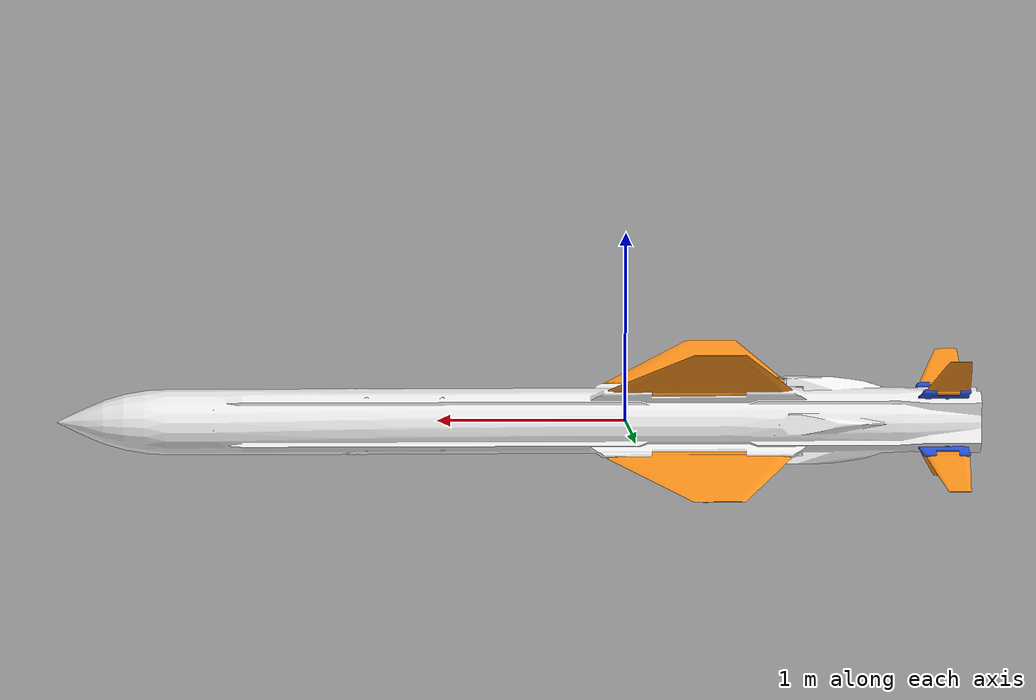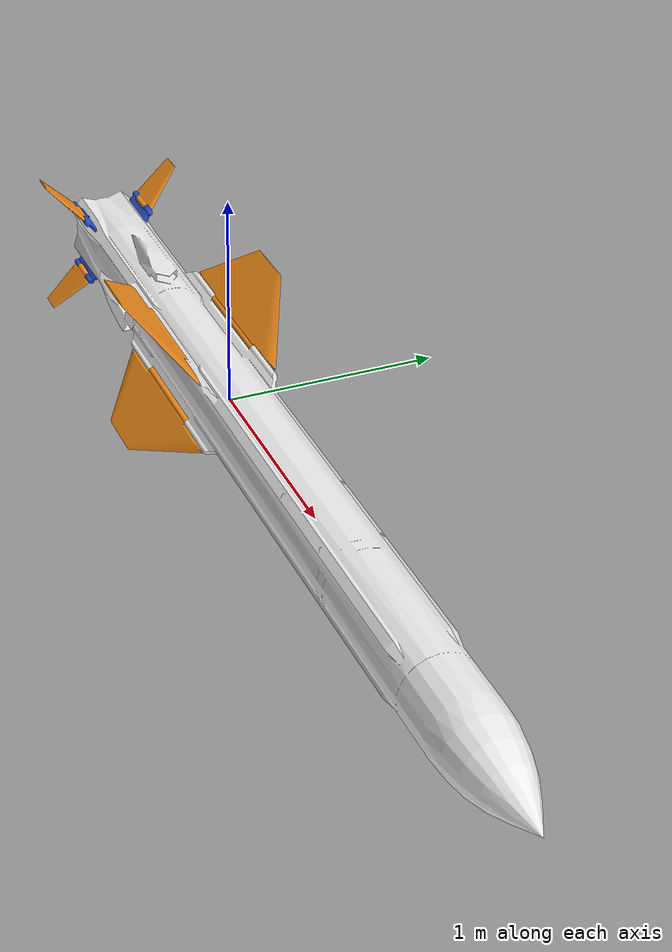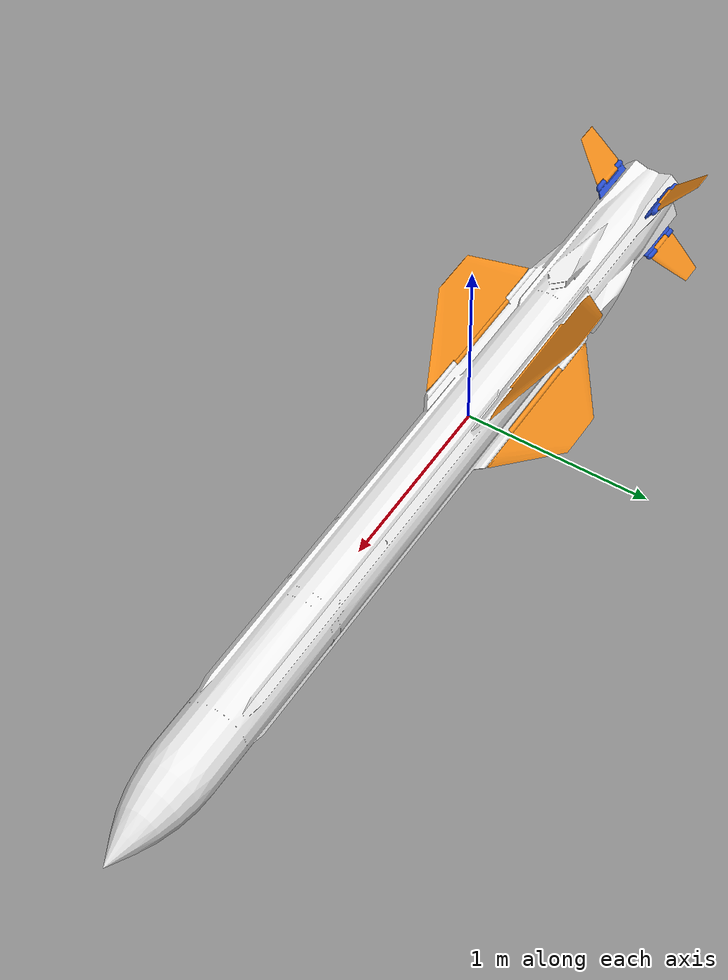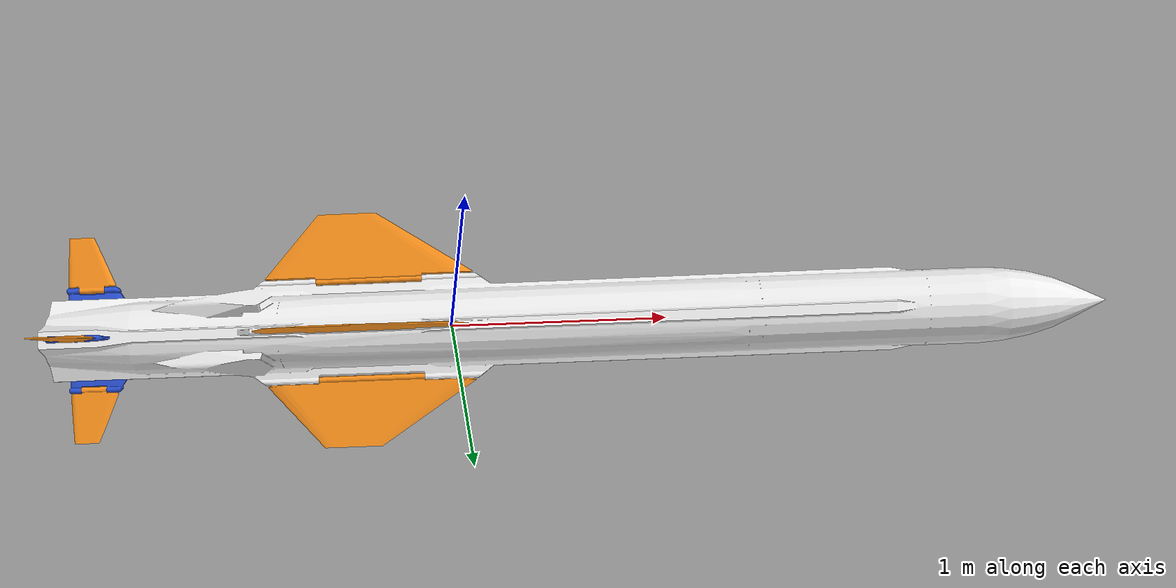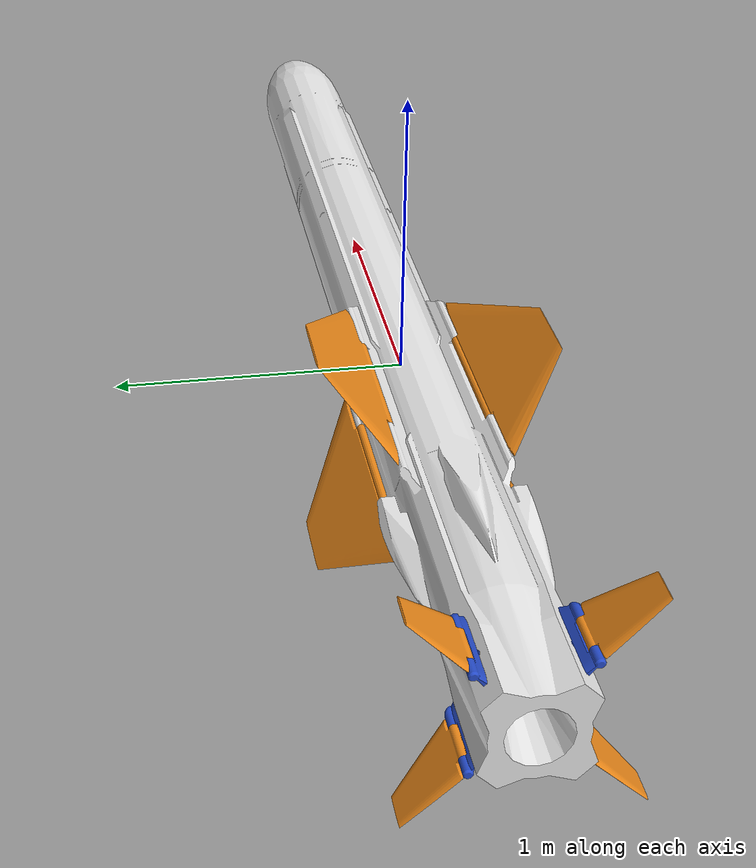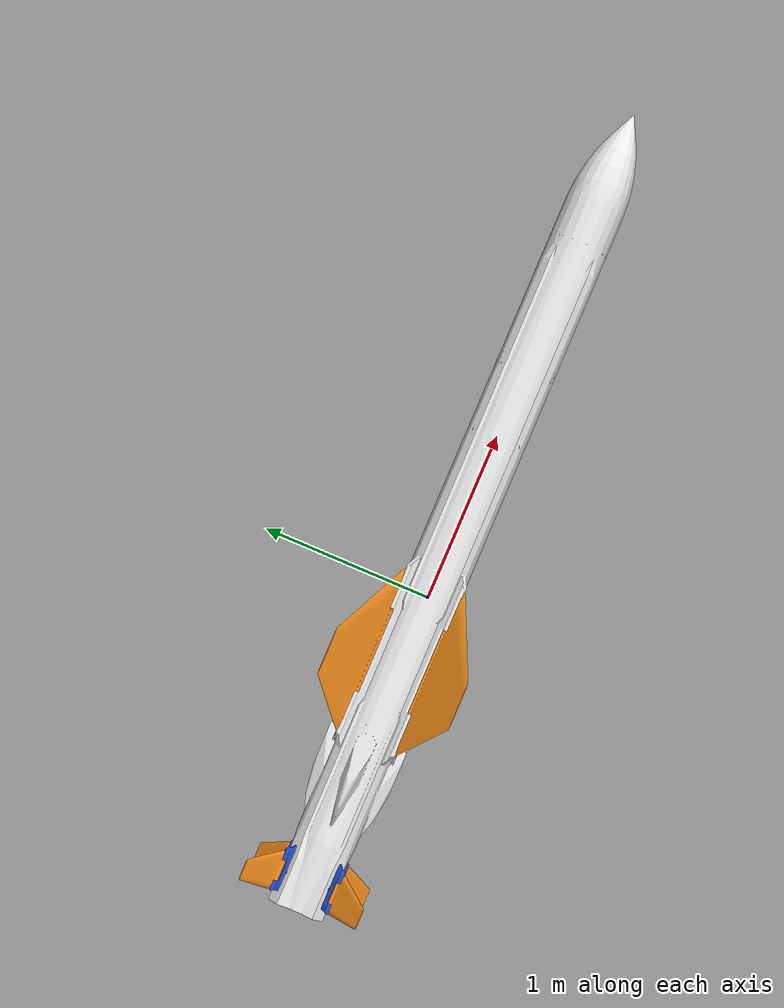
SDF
<sdf version='1.7'>
  <model name='model_missile'>
    <link name='base_link'>
      <inertial>
        <pose>-0.025549 1.1e-05 1.1e-05 0 -0 0</pose>
        <mass>599.968</mass>
        <inertia>
          <ixx>16.3793</ixx>
          <ixy>0.00254175</ixy>
          <ixz>0.00254175</ixz>
          <iyy>826.732</iyy>
          <iyz>-0.00308126</iyz>
          <izz>826.732</izz>
        </inertia>
      </inertial>
      <collision name='base_link_collision'>
        <pose>0 0 0 0 -0 0</pose>
        <geometry>
          <mesh>
            <scale>0.001 0.001 0.001</scale>
            <uri>model://model_missile_description/meshes/base_link.stl</uri>
          </mesh>
        </geometry>
        <surface>
          <contact>
            <ode/>
          </contact>
          <friction>
            <ode>
              <mu>0.2</mu>
              <mu2>0.2</mu2>
            </ode>
          </friction>
        </surface>
      </collision>
      <collision name='base_link_fixed_joint_lump__Wing1_1_collision_1'>
        <pose>0 0 0 0 -0 0</pose>
        <geometry>
          <mesh>
            <scale>0.001 0.001 0.001</scale>
            <uri>model://model_missile_description/meshes/Wing1_1.stl</uri>
          </mesh>
        </geometry>
        <surface>
          <contact>
            <ode/>
          </contact>
          <friction>
            <ode>
              <mu>0.2</mu>
              <mu2>0.2</mu2>
            </ode>
          </friction>
        </surface>
      </collision>
      <collision name='base_link_fixed_joint_lump__Wing1_2_collision_2'>
        <pose>0 0 0 0 -0 0</pose>
        <geometry>
          <mesh>
            <scale>0.001 0.001 0.001</scale>
            <uri>model://model_missile_description/meshes/Wing1_2.stl</uri>
          </mesh>
        </geometry>
        <surface>
          <contact>
            <ode/>
          </contact>
          <friction>
            <ode>
              <mu>0.2</mu>
              <mu2>0.2</mu2>
            </ode>
          </friction>
        </surface>
      </collision>
      <collision name='base_link_fixed_joint_lump__Wing1_3_collision_3'>
        <pose>0 0 0 0 -0 0</pose>
        <geometry>
          <mesh>
            <scale>0.001 0.001 0.001</scale>
            <uri>model://model_missile_description/meshes/Wing1_3.stl</uri>
          </mesh>
        </geometry>
        <surface>
          <contact>
            <ode/>
          </contact>
          <friction>
            <ode>
              <mu>0.2</mu>
              <mu2>0.2</mu2>
            </ode>
          </friction>
        </surface>
      </collision>
      <collision name='base_link_fixed_joint_lump__Wing1_4_collision_4'>
        <pose>0 0 0 0 -0 0</pose>
        <geometry>
          <mesh>
            <scale>0.001 0.001 0.001</scale>
            <uri>model://model_missile_description/meshes/Wing1_4.stl</uri>
          </mesh>
        </geometry>
        <surface>
          <contact>
            <ode/>
          </contact>
          <friction>
            <ode>
              <mu>0.2</mu>
              <mu2>0.2</mu2>
            </ode>
          </friction>
        </surface>
      </collision>
      <visual name='base_link_visual'>
        <pose>0 0 0 0 -0 0</pose>
        <geometry>
          <mesh>
            <scale>0.001 0.001 0.001</scale>
            <uri>model://model_missile_description/meshes/base_link.stl</uri>
          </mesh>
        </geometry>
        <plugin name='LiftDragVisual' filename='libMultiplevectorVisual.so'>
          <topic_name vector_size='5'>AeroVectors</topic_name>
        </plugin>
        <plugin name='VectoredThrustVisual' filename='libForceVisual.so'>
          <topic_name>thrust_visual</topic_name>
          <color>Gazebo/Green</color>
        </plugin>
        <material>
          <script>
            <name>Gazebo/White</name>
            <uri>file://media/materials/scripts/gazebo.material</uri>
          </script>
        </material>
      </visual>
      <visual name='base_link_fixed_joint_lump__Wing1_1_visual_1'>
        <pose>0 0 0 0 -0 0</pose>
        <geometry>
          <mesh>
            <scale>0.001 0.001 0.001</scale>
            <uri>model://model_missile_description/meshes/Wing1_1.stl</uri>
          </mesh>
        </geometry>
        <material>
          <script>
            <name>Gazebo/Orange</name>
            <uri>file://media/materials/scripts/gazebo.material</uri>
          </script>
        </material>
      </visual>
      <visual name='base_link_fixed_joint_lump__Wing1_2_visual_2'>
        <pose>0 0 0 0 -0 0</pose>
        <geometry>
          <mesh>
            <scale>0.001 0.001 0.001</scale>
            <uri>model://model_missile_description/meshes/Wing1_2.stl</uri>
          </mesh>
        </geometry>
        <material>
          <script>
            <name>Gazebo/Orange</name>
            <uri>file://media/materials/scripts/gazebo.material</uri>
          </script>
        </material>
      </visual>
      <visual name='base_link_fixed_joint_lump__Wing1_3_visual_3'>
        <pose>0 0 0 0 -0 0</pose>
        <geometry>
          <mesh>
            <scale>0.001 0.001 0.001</scale>
            <uri>model://model_missile_description/meshes/Wing1_3.stl</uri>
          </mesh>
        </geometry>
        <material>
          <script>
            <name>Gazebo/Orange</name>
            <uri>file://media/materials/scripts/gazebo.material</uri>
          </script>
        </material>
      </visual>
      <visual name='base_link_fixed_joint_lump__Wing1_4_visual_4'>
        <pose>0 0 0 0 -0 0</pose>
        <geometry>
          <mesh>
            <scale>0.001 0.001 0.001</scale>
            <uri>model://model_missile_description/meshes/Wing1_4.stl</uri>
          </mesh>
        </geometry>
        <material>
          <script>
            <name>Gazebo/Orange</name>
            <uri>file://media/materials/scripts/gazebo.material</uri>
          </script>
        </material>
      </visual>
      <gravity>1</gravity>
      <sensor name='camera_top_side' type='camera'>
        <pose>-2 0 2 0 0.5236 0</pose>
        <camera>
          <horizontal_fov>1.347</horizontal_fov>
          <image>
            <width>640</width>
            <height>480</height>
          </image>
          <clip>
            <near>0.1</near>
            <far>100</far>
          </clip>
        </camera>
        <always_on>1</always_on>
        <update_rate>30</update_rate>
      </sensor>
      <sensor name='camera_deflection' type='camera'>
        <pose>-1 -1 0 0 -0 2.3562</pose>
        <camera>
          <horizontal_fov>1.347</horizontal_fov>
          <image>
            <width>640</width>
            <height>480</height>
          </image>
          <clip>
            <near>0.1</near>
            <far>1000</far>
          </clip>
        </camera>
        <always_on>1</always_on>
        <update_rate>30</update_rate>
      </sensor>
      <sensor name='touching_ground' type='contact'>
        <contact>
          <collision>base_link_collision</collision>
          <topic>__default_topic__</topic>
        </contact>
      </sensor>
      <self_collide>1</self_collide>
    </link>
    <joint name='fins_rev1' type='revolute'>
      <pose relative_to='base_link'>-1.70084 0.127279 0.127279 0 -0 0</pose>
      <parent>base_link</parent>
      <child>FinHolder_1</child>
      <axis>
        <xyz>0 0.707107 0.707107</xyz>
        <limit>
          <lower>-0.349066</lower>
          <upper>0.349066</upper>
          <effort>1e+06</effort>
          <velocity>1e+06</velocity>
        </limit>
        <dynamics>
          <spring_reference>0</spring_reference>
          <spring_stiffness>0</spring_stiffness>
        </dynamics>
      </axis>
      <physics>
        <ode>
          <limit>
            <cfm>0</cfm>
            <erp>0.2</erp>
          </limit>
        </ode>
      </physics>
      <physics>
        <ode>
          <cfm_damping>1</cfm_damping>
          <limit>
            <cfm>1</cfm>
            <erf>1</erf>
            <erp>0.2</erp>
          </limit>
        </ode>
      </physics>
      <dynamic>
        <damping>5</damping>
        <spring_stiffness>0.5</spring_stiffness>
        <spring_reference>0.5</spring_reference>
      </dynamic>
    </joint>
    <link name='FinHolder_1'>
      <pose relative_to='fins_rev1'>0 0 0 0 -0 0</pose>
      <inertial>
        <pose>-0.005947 0.076299 0.076298 0 -0 0</pose>
        <mass>2.2</mass>
        <inertia>
          <ixx>0.012605</ixx>
          <ixy>0.00187564</ixy>
          <ixz>0.0018757</ixz>
          <iyy>0.0149545</iyy>
          <iyz>-0.00624299</iyz>
          <izz>0.0149541</izz>
        </inertia>
      </inertial>
      <collision name='FinHolder_1_collision'>
        <pose>1.70084 -0.127279 -0.127279 0 -0 0</pose>
        <geometry>
          <mesh>
            <scale>0.001 0.001 0.001</scale>
            <uri>model://model_missile_description/meshes/FinHolder_1.stl</uri>
          </mesh>
        </geometry>
        <surface>
          <contact>
            <ode/>
          </contact>
          <friction>
            <ode>
              <mu>0.2</mu>
              <mu2>0.2</mu2>
            </ode>
          </friction>
        </surface>
      </collision>
      <collision name='FinHolder_1_fixed_joint_lump__Fin_1_collision_1'>
        <pose>1.70084 -0.127279 -0.127279 0 -0 0</pose>
        <geometry>
          <mesh>
            <scale>0.001 0.001 0.001</scale>
            <uri>model://model_missile_description/meshes/Fin_1.stl</uri>
          </mesh>
        </geometry>
        <surface>
          <contact>
            <ode/>
          </contact>
          <friction>
            <ode>
              <mu>0.2</mu>
              <mu2>0.2</mu2>
            </ode>
          </friction>
        </surface>
      </collision>
      <visual name='FinHolder_1_visual'>
        <pose>1.70084 -0.127279 -0.127279 0 -0 0</pose>
        <geometry>
          <mesh>
            <scale>0.001 0.001 0.001</scale>
            <uri>model://model_missile_description/meshes/FinHolder_1.stl</uri>
          </mesh>
        </geometry>
        <plugin name='Fin1LiftDragVisual' filename='libMultiplevectorVisual.so'>
          <topic_name vector_size='5'>AeroVectorsFin1</topic_name>
        </plugin>
        <material>
          <script>
            <name>Gazebo/Blue</name>
            <uri>file://media/materials/scripts/gazebo.material</uri>
          </script>
        </material>
      </visual>
      <visual name='FinHolder_1_fixed_joint_lump__Fin_1_visual_1'>
        <pose>1.70084 -0.127279 -0.127279 0 -0 0</pose>
        <geometry>
          <mesh>
            <scale>0.001 0.001 0.001</scale>
            <uri>model://model_missile_description/meshes/Fin_1.stl</uri>
          </mesh>
        </geometry>
        <material>
          <script>
            <name>Gazebo/Orange</name>
            <uri>file://media/materials/scripts/gazebo.material</uri>
          </script>
        </material>
      </visual>
      <self_collide>1</self_collide>
    </link>
    <joint name='fins_rev2' type='revolute'>
      <pose relative_to='base_link'>-1.70084 0.127279 -0.127279 0 -0 0</pose>
      <parent>base_link</parent>
      <child>FinHolder_2</child>
      <axis>
        <xyz>0 0.707107 -0.707107</xyz>
        <limit>
          <lower>-0.349066</lower>
          <upper>0.349066</upper>
          <effort>1e+06</effort>
          <velocity>1e+06</velocity>
        </limit>
        <dynamics>
          <spring_reference>0</spring_reference>
          <spring_stiffness>0</spring_stiffness>
        </dynamics>
      </axis>
      <physics>
        <ode>
          <limit>
            <cfm>0</cfm>
            <erp>0.2</erp>
          </limit>
        </ode>
      </physics>
      <physics>
        <ode>
          <cfm_damping>1</cfm_damping>
          <limit>
            <cfm>1</cfm>
            <erf>1</erf>
            <erp>0.2</erp>
          </limit>
        </ode>
      </physics>
      <dynamic>
        <damping>5</damping>
        <spring_stiffness>0.5</spring_stiffness>
        <spring_reference>0.5</spring_reference>
      </dynamic>
    </joint>
    <link name='FinHolder_2'>
      <pose relative_to='fins_rev2'>0 0 0 0 -0 0</pose>
      <inertial>
        <pose>-0.005947 0.076289 -0.076308 0 -0 0</pose>
        <mass>2.2</mass>
        <inertia>
          <ixx>0.012605</ixx>
          <ixy>0.00187555</ixy>
          <ixz>-0.00187579</ixz>
          <iyy>0.014955</iyy>
          <iyz>0.00624299</iyz>
          <izz>0.0149536</izz>
        </inertia>
      </inertial>
      <collision name='FinHolder_2_collision'>
        <pose>1.70084 -0.127279 0.127279 0 -0 0</pose>
        <geometry>
          <mesh>
            <scale>0.001 0.001 0.001</scale>
            <uri>model://model_missile_description/meshes/FinHolder_2.stl</uri>
          </mesh>
        </geometry>
        <surface>
          <contact>
            <ode/>
          </contact>
          <friction>
            <ode>
              <mu>0.2</mu>
              <mu2>0.2</mu2>
            </ode>
          </friction>
        </surface>
      </collision>
      <collision name='FinHolder_2_fixed_joint_lump__Fin_2_collision_1'>
        <pose>1.70084 -0.127279 0.127279 0 -0 0</pose>
        <geometry>
          <mesh>
            <scale>0.001 0.001 0.001</scale>
            <uri>model://model_missile_description/meshes/Fin_2.stl</uri>
          </mesh>
        </geometry>
        <surface>
          <contact>
            <ode/>
          </contact>
          <friction>
            <ode>
              <mu>0.2</mu>
              <mu2>0.2</mu2>
            </ode>
          </friction>
        </surface>
      </collision>
      <visual name='FinHolder_2_visual'>
        <pose>1.70084 -0.127279 0.127279 0 -0 0</pose>
        <geometry>
          <mesh>
            <scale>0.001 0.001 0.001</scale>
            <uri>model://model_missile_description/meshes/FinHolder_2.stl</uri>
          </mesh>
        </geometry>
        <plugin name='Fin2LiftDragVisual' filename='libMultiplevectorVisual.so'>
          <topic_name vector_size='5'>AeroVectorsFin2</topic_name>
        </plugin>
        <material>
          <script>
            <name>Gazebo/Blue</name>
            <uri>file://media/materials/scripts/gazebo.material</uri>
          </script>
        </material>
      </visual>
      <visual name='FinHolder_2_fixed_joint_lump__Fin_2_visual_1'>
        <pose>1.70084 -0.127279 0.127279 0 -0 0</pose>
        <geometry>
          <mesh>
            <scale>0.001 0.001 0.001</scale>
            <uri>model://model_missile_description/meshes/Fin_2.stl</uri>
          </mesh>
        </geometry>
        <material>
          <script>
            <name>Gazebo/Orange</name>
            <uri>file://media/materials/scripts/gazebo.material</uri>
          </script>
        </material>
      </visual>
      <self_collide>1</self_collide>
    </link>
    <joint name='fins_rev3' type='revolute'>
      <pose relative_to='base_link'>-1.70084 -0.127279 -0.127279 0 -0 0</pose>
      <parent>base_link</parent>
      <child>FinHolder_3</child>
      <axis>
        <xyz>0 -0.707107 -0.707107</xyz>
        <limit>
          <lower>-0.349066</lower>
          <upper>0.349066</upper>
          <effort>1e+06</effort>
          <velocity>1e+06</velocity>
        </limit>
        <dynamics>
          <spring_reference>0</spring_reference>
          <spring_stiffness>0</spring_stiffness>
        </dynamics>
      </axis>
      <physics>
        <ode>
          <limit>
            <cfm>0</cfm>
            <erp>0.2</erp>
          </limit>
        </ode>
      </physics>
      <physics>
        <ode>
          <cfm_damping>1</cfm_damping>
          <limit>
            <cfm>1</cfm>
            <erf>1</erf>
            <erp>0.2</erp>
          </limit>
        </ode>
      </physics>
      <dynamic>
        <damping>5</damping>
        <spring_stiffness>0.5</spring_stiffness>
        <spring_reference>0.5</spring_reference>
      </dynamic>
    </joint>
    <link name='FinHolder_3'>
      <pose relative_to='fins_rev3'>0 0 0 0 -0 0</pose>
      <inertial>
        <pose>-0.005947 -0.076299 -0.076298 0 -0 0</pose>
        <mass>2.2</mass>
        <inertia>
          <ixx>0.012605</ixx>
          <ixy>-0.00187564</ixy>
          <ixz>-0.0018757</ixz>
          <iyy>0.0149545</iyy>
          <iyz>-0.00624299</iyz>
          <izz>0.0149541</izz>
        </inertia>
      </inertial>
      <collision name='FinHolder_3_collision'>
        <pose>1.70084 0.127279 0.127279 0 -0 0</pose>
        <geometry>
          <mesh>
            <scale>0.001 0.001 0.001</scale>
            <uri>model://model_missile_description/meshes/FinHolder_3.stl</uri>
          </mesh>
        </geometry>
        <surface>
          <contact>
            <ode/>
          </contact>
          <friction>
            <ode>
              <mu>0.2</mu>
              <mu2>0.2</mu2>
            </ode>
          </friction>
        </surface>
      </collision>
      <collision name='FinHolder_3_fixed_joint_lump__Fin_3_collision_1'>
        <pose>1.70084 0.127279 0.127279 0 -0 0</pose>
        <geometry>
          <mesh>
            <scale>0.001 0.001 0.001</scale>
            <uri>model://model_missile_description/meshes/Fin_3.stl</uri>
          </mesh>
        </geometry>
        <surface>
          <contact>
            <ode/>
          </contact>
          <friction>
            <ode>
              <mu>0.2</mu>
              <mu2>0.2</mu2>
            </ode>
          </friction>
        </surface>
      </collision>
      <visual name='FinHolder_3_visual'>
        <pose>1.70084 0.127279 0.127279 0 -0 0</pose>
        <geometry>
          <mesh>
            <scale>0.001 0.001 0.001</scale>
            <uri>model://model_missile_description/meshes/FinHolder_3.stl</uri>
          </mesh>
        </geometry>
        <plugin name='Fin3LiftDragVisual' filename='libMultiplevectorVisual.so'>
          <topic_name vector_size='5'>AeroVectorsFin3</topic_name>
        </plugin>
        <material>
          <script>
            <name>Gazebo/Blue</name>
            <uri>file://media/materials/scripts/gazebo.material</uri>
          </script>
        </material>
      </visual>
      <visual name='FinHolder_3_fixed_joint_lump__Fin_3_visual_1'>
        <pose>1.70084 0.127279 0.127279 0 -0 0</pose>
        <geometry>
          <mesh>
            <scale>0.001 0.001 0.001</scale>
            <uri>model://model_missile_description/meshes/Fin_3.stl</uri>
          </mesh>
        </geometry>
        <material>
          <script>
            <name>Gazebo/Orange</name>
            <uri>file://media/materials/scripts/gazebo.material</uri>
          </script>
        </material>
      </visual>
      <self_collide>1</self_collide>
    </link>
    <joint name='fins_rev4' type='revolute'>
      <pose relative_to='base_link'>-1.70084 -0.127279 0.127279 0 -0 0</pose>
      <parent>base_link</parent>
      <child>FinHolder_4</child>
      <axis>
        <xyz>0 -0.707107 0.707107</xyz>
        <limit>
          <lower>-0.349066</lower>
          <upper>0.349066</upper>
          <effort>1e+06</effort>
          <velocity>1e+06</velocity>
        </limit>
        <dynamics>
          <spring_reference>0</spring_reference>
          <spring_stiffness>0</spring_stiffness>
        </dynamics>
      </axis>
      <physics>
        <ode>
          <limit>
            <cfm>0</cfm>
            <erp>0.2</erp>
          </limit>
        </ode>
      </physics>
      <physics>
        <ode>
          <cfm_damping>1</cfm_damping>
          <limit>
            <cfm>1</cfm>
            <erf>1</erf>
            <erp>0.2</erp>
          </limit>
        </ode>
      </physics>
      <dynamic>
        <damping>5</damping>
        <spring_stiffness>0.5</spring_stiffness>
        <spring_reference>0.5</spring_reference>
      </dynamic>
    </joint>
    <link name='FinHolder_4'>
      <pose relative_to='fins_rev4'>0 0 0 0 -0 0</pose>
      <inertial>
        <pose>-0.005947 -0.076298 0.076299 0 -0 0</pose>
        <mass>2.2</mass>
        <inertia>
          <ixx>0.012605</ixx>
          <ixy>-0.0018757</ixy>
          <ixz>0.00187564</ixz>
          <iyy>0.0149541</iyy>
          <iyz>0.00624299</iyz>
          <izz>0.0149545</izz>
        </inertia>
      </inertial>
      <collision name='FinHolder_4_collision'>
        <pose>1.70084 0.127279 -0.127279 0 -0 0</pose>
        <geometry>
          <mesh>
            <scale>0.001 0.001 0.001</scale>
            <uri>model://model_missile_description/meshes/FinHolder_4.stl</uri>
          </mesh>
        </geometry>
        <surface>
          <contact>
            <ode/>
          </contact>
          <friction>
            <ode>
              <mu>0.2</mu>
              <mu2>0.2</mu2>
            </ode>
          </friction>
        </surface>
      </collision>
      <collision name='FinHolder_4_fixed_joint_lump__Fin_4_collision_1'>
        <pose>1.70084 0.127279 -0.127279 0 -0 0</pose>
        <geometry>
          <mesh>
            <scale>0.001 0.001 0.001</scale>
            <uri>model://model_missile_description/meshes/Fin_4.stl</uri>
          </mesh>
        </geometry>
        <surface>
          <contact>
            <ode/>
          </contact>
          <friction>
            <ode>
              <mu>0.2</mu>
              <mu2>0.2</mu2>
            </ode>
          </friction>
        </surface>
      </collision>
      <visual name='FinHolder_4_visual'>
        <pose>1.70084 0.127279 -0.127279 0 -0 0</pose>
        <geometry>
          <mesh>
            <scale>0.001 0.001 0.001</scale>
            <uri>model://model_missile_description/meshes/FinHolder_4.stl</uri>
          </mesh>
        </geometry>
        <plugin name='Fin4LiftDragVisual' filename='libMultiplevectorVisual.so'>
          <topic_name vector_size='5'>AeroVectorsFin4</topic_name>
        </plugin>
        <material>
          <script>
            <name>Gazebo/Blue</name>
            <uri>file://media/materials/scripts/gazebo.material</uri>
          </script>
        </material>
      </visual>
      <visual name='FinHolder_4_fixed_joint_lump__Fin_4_visual_1'>
        <pose>1.70084 0.127279 -0.127279 0 -0 0</pose>
        <geometry>
          <mesh>
            <scale>0.001 0.001 0.001</scale>
            <uri>model://model_missile_description/meshes/Fin_4.stl</uri>
          </mesh>
        </geometry>
        <material>
          <script>
            <name>Gazebo/Orange</name>
            <uri>file://media/materials/scripts/gazebo.material</uri>
          </script>
        </material>
      </visual>
      <self_collide>1</self_collide>
    </link>
    <static>0</static>
    <plugin name='set_joint_position' filename='libInitialPosition.so'>
      <joint name='fin_fold1'>2.1467549799530254</joint>
      <joint name='fin_fold2'>2.1467549799530254</joint>
      <joint name='fin_fold3'>2.1467549799530254</joint>
      <joint name='fin_fold4'>2.1467549799530254</joint>
      <joint name='wings_fold1'>2.1467549799530254</joint>
      <joint name='wings_fold2'>2.1467549799530254</joint>
      <joint name='wings_fold3'>2.1467549799530254</joint>
      <joint name='wings_fold4'>2.1467549799530254</joint>
    </plugin>
    <plugin name='DynamicState' filename='libPosePublisher.so'>
      <topic_name>DynamicState</topic_name>
      <link_name>base_link</link_name>
      <robotNamespace/>
    </plugin>
    <plugin name='model_missile_controller' filename='libgazebo_ros_control.so'>
      <robotNamespace>model_missile_controller</robotNamespace>
      <robotSimType>gazebo_ros_control/DefaultRobotHWSim</robotSimType>
    </plugin>
    <plugin name='ThrustVectoring' filename='libThrustVectoring.so'>
      <link_name>base_link</link_name>
      <forward_dir>1 0 0</forward_dir>
      <thrust_origin>-1.880 0 0</thrust_origin>
      <robotNamespace/>
      <topic_name>thrust_visual</topic_name>
      <vector_topic>thrust_force</vector_topic>
    </plugin>
    <plugin name='FullBodyAerodynamic' filename='libAerodynamic.so'>
      <cp>-0.238 0.0 0.0</cp>
      <sref>0.096</sref>
      <lref>0.350</lref>
      <air_density>1.2041</air_density>
      <link_name>base_link</link_name>
      <upward>0 0 1</upward>
      <forward>1 0 0</forward>
      <robotNamespace/>
      <topic_name>AeroVectors</topic_name>
      <aerodynamics axis_type='both' case='boosterless'>
        <mach_table>0.2, 0.4, 0.5, 0.6, 0.7, 0.75, 0.8, 0.93</mach_table>
        <alpha_table>.00, 4.00, 8.00, 12.00, 16.00, 20.00, 24.00, 28.00</alpha_table>
        <mach nr='0.2'>
          <cn_table>0.000, 1.013, 2.044, 3.181, 4.150, 5.103, 5.967, 6.846</cn_table>
          <cm_table>0.000, -0.041, 0.192, 0.339, 1.345, 2.745, 4.378, 5.630</cm_table>
          <ca_table>0.239, 0.221, 0.167, 0.122, 0.110, 0.141, 0.118, 0.056</ca_table>
          <cl_table>0.000, 0.995, 2.001, 3.086, 3.959, 4.747, 5.403, 6.019</cl_table>
          <cd_table>0.239, 0.292, 0.450, 0.780, 1.249, 1.878, 2.535, 3.264</cd_table>
        </mach>
        <mach nr='0.4'>
          <cn_table>0.000, 1.027, 2.062, 3.192, 4.132, 5.086, 5.996, 6.957</cn_table>
          <cm_table>0.000, -0.068, 0.153, 0.311, 1.412, 2.792, 4.345, 5.636</cm_table>
          <ca_table>0.236, 0.219, 0.166, 0.122, 0.110, 0.138, 0.112, 0.046</ca_table>
          <cl_table>0.000, 1.009, 2.019, 3.097, 3.941, 4.732, 5.432, 6.121</cl_table>
          <cd_table>0.236, 0.290, 0.451, 0.783, 1.244, 1.869, 2.541, 3.306</cd_table>
        </mach>
        <mach nr='0.5'>
          <cn_table>0.000, 1.046, 2.096, 3.243, 4.188, 5.148, 6.084, 7.158</cn_table>
          <cm_table>0.000, -0.094, 0.100, 0.197, 1.278, 2.623, 4.198, 5.696</cm_table>
          <ca_table>0.234, 0.216, 0.161, 0.115, 0.103, 0.134, 0.108, 0.036</ca_table>
          <cl_table>0.000, 1.028, 2.053, 3.149, 3.997, 4.792, 5.515, 6.304</cl_table>
          <cd_table>0.234, 0.289, 0.451, 0.787, 1.254, 1.886, 2.573, 3.392</cd_table>
        </mach>
        <mach nr='0.6'>
          <cn_table>0.000, 1.069, 2.135, 3.296, 4.245, 5.229, 6.262, 7.452</cn_table>
          <cm_table>0.000, -0.123, 0.047, 0.108, 1.172, 2.533, 4.201, 5.827</cm_table>
          <ca_table>0.232, 0.213, 0.156, 0.109, 0.098, 0.130, 0.101, 0.025</ca_table>
          <cl_table>0.000, 1.051, 2.093, 3.202, 4.053, 4.869, 5.680, 6.568</cl_table>
          <cd_table>0.232, 0.288, 0.452, 0.792, 1.264, 1.910, 2.639, 3.520</cd_table>
        </mach>
        <mach nr='0.7'>
          <cn_table>0.000, 1.076, 2.145, 3.306, 4.278, 5.339, 6.450, 7.770</cn_table>
          <cm_table>0.000, -0.137, 0.019, 0.065, 1.056, 2.521, 4.151, 5.839</cm_table>
          <ca_table>0.230, 0.211, 0.154, 0.107, 0.096, 0.127, 0.095, 0.014</ca_table>
          <cl_table>0.000, 1.059, 2.103, 3.212, 4.086, 4.974, 5.854, 6.854</cl_table>
          <cd_table>0.230, 0.286, 0.451, 0.792, 1.271, 1.945, 2.711, 3.660</cd_table>
        </mach>
        <mach nr='0.75'>
          <cn_table>0.000, 1.094, 2.176, 3.352, 4.351, 5.448, 6.612, 7.995</cn_table>
          <cm_table>0.000, -0.161, -0.032, -0.027, 0.919, 2.405, 4.021, 5.713</cm_table>
          <ca_table>0.230, 0.210, 0.152, 0.104, 0.093, 0.124, 0.092, 0.008</ca_table>
          <cl_table>0.000, 1.077, 2.134, 3.258, 4.156, 5.077, 6.002, 7.055</cl_table>
          <cd_table>0.230, 0.286, 0.453, 0.799, 1.289, 1.980, 2.774, 3.761</cd_table>
        </mach>
        <mach nr='0.8'>
          <cn_table>0.000, 1.124, 2.250, 3.504, 4.588, 5.763, 7.008, 8.441</cn_table>
          <cm_table>0.000, -0.183, -0.077, -0.163, 0.762, 2.194, 3.861, 5.428</cm_table>
          <ca_table>0.245, 0.225, 0.163, 0.112, 0.100, 0.134, 0.103, 0.017</ca_table>
          <cl_table>0.000, 1.106, 2.205, 3.404, 4.383, 5.369, 6.360, 7.445</cl_table>
          <cd_table>0.245, 0.302, 0.474, 0.838, 1.361, 2.097, 2.944, 3.978</cd_table>
        </mach>
        <mach nr='0.93'>
          <cn_table>0.000, 1.227, 2.460, 3.862, 5.108, 6.451, 7.887, 9.638</cn_table>
          <cm_table>0.000, -0.249, -0.243, -0.576, 0.241, 1.695, 3.348, 4.986</cm_table>
          <ca_table>0.433, 0.430, 0.416, 0.397, 0.377, 0.355, 0.292, 0.172</ca_table>
          <cl_table>0.000, 1.194, 2.378, 3.695, 4.806, 5.941, 7.086, 8.429</cl_table>
          <cd_table>0.433, 0.514, 0.754, 1.191, 1.771, 2.540, 3.475, 4.676</cd_table>
        </mach>
      </aerodynamics>
    </plugin>
    <plugin name='Fin1Aerodynamic' filename='libAerodynamic.so'>
      <cp>0.0 0.1 0.1</cp>
      <sref>0.044</sref>
      <lref>0.27</lref>
      <air_density>1.2041</air_density>
      <link_name>FinHolder_1</link_name>
      <control_joint_name>fins_rev1</control_joint_name>
      <upward>0 -1 1</upward>
      <forward>1 0 0</forward>
      <robotNamespace/>
      <topic_name>AeroVectorsFin1</topic_name>
      <aerodynamics axis_type='body' case='with_booster'>
        <mach_table>0.2 0.4 0.5 0.6 0.7 0.75 0.8 0.93</mach_table>
        <alpha_table>.00, 4.00, 8.00, 12.00, 16.00, 20.00, 24.00, 28.00</alpha_table>
        <control_joint_rate>.1024, .1092, .1167, .1272, .1434, .1552</control_joint_rate>
        <mach nr='0.2'>
          <cn_table>.0000, .2863, .5432, .8305, .9726, 1.0564, 1.0950, 1.1860</cn_table>
          <cm_table>.0000, -1.1294, -2.1425, -3.2754, -3.8362, -4.1665, -4.3190, -4.6776</cm_table>
          <ca_table>.0229, .0229, .0229, .0229, .0229, .0229, .0229, .0229</ca_table>
        </mach>
        <mach nr='0.4'>
          <cn_table>.0000, .2923, .5521, .8386, .9666, 1.0587, 1.1216, 1.2260</cn_table>
          <cm_table>.0000, -1.1529, -2.1774, -3.3071, -3.8121, -4.1751, -4.4232, -4.8352</cm_table>
          <ca_table>.0225, .0225, .0225, .0225, .0225, .0225, .0225, .0225</ca_table>
        </mach>
        <mach nr='0.5'>
          <cn_table>.0000, .2986, .5646, .8627, .9958, 1.0958, 1.1631, 1.2684</cn_table>
          <cm_table>.0000, -1.1776, -2.2265, -3.4022, -3.9270, -4.3213, -4.5867, -5.0019</cm_table>
          <ca_table>.0222, .0222, .0222, .0222, .0222, .0222, .0222, .0222</ca_table>
        </mach>
        <mach nr='0.6'>
          <cn_table>.0000, .3058, .5776, .8835, 1.0210, 1.1251, 1.2047, 1.3162</cn_table>
          <cm_table>.0000, -1.2057, -2.2773, -3.4837, -4.0256, -4.4363, -4.7500, -5.1897</cm_table>
          <ca_table>.0220, .0220, .0220, .0220, .0220, .0220, .0220, .0220</ca_table>
        </mach>
        <mach nr='0.7'>
          <cn_table>.0000, .3090, .5835, .8925, 1.0449, 1.1529, 1.2554, 1.3839</cn_table>
          <cm_table>.0000, -1.2180, -2.3000, -3.5184, -4.1193, -4.5447, -4.9488, -5.4556</cm_table>
          <ca_table>.0217, .0217, .0217, .0217, .0217, .0217, .0217, .0217</ca_table>
        </mach>
        <mach nr='0.75'>
          <cn_table>.0000, .3148, .5951, .9124, 1.0761, 1.1889, 1.3036, 1.4442</cn_table>
          <cm_table>.0000, -1.2408, -2.3455, -3.5963, -4.2415, -4.6862, -5.1381, -5.6925</cm_table>
          <ca_table>.0215, .0215, .0215, .0215, .0215, .0215, .0215, .0215</ca_table>
        </mach>
        <mach nr='0.8'>
          <cn_table>.0000, .3217, .6110, .9516, 1.1309, 1.2632, 1.3835, 1.5524</cn_table>
          <cm_table>.0000, -1.2678, -2.4078, -3.7498, -4.4566, -4.9777, -5.4518, -6.1174</cm_table>
          <ca_table>.0214, .0214, .0214, .0214, .0214, .0214, .0214, .0214</ca_table>
        </mach>
        <mach nr='0.93'>
          <cn_table>.0000, .3446, .6624, 1.0588, 1.2808, 1.4380, 1.5948, 1.8203</cn_table>
          <cm_table>.0000, -1.3555, -2.6054, -4.1647, -5.0379, -5.6562, -6.2730, -7.1600</cm_table>
          <ca_table>.0561, .0561, .0561, .0561, .0561, .0561, .0561, .0561</ca_table>
        </mach>
      </aerodynamics>
    </plugin>
    <plugin name='Fin2Aerodynamic' filename='libAerodynamic.so'>
      <cp>0.0 0.1 -0.1</cp>
      <sref>0.044</sref>
      <lref>0.27</lref>
      <air_density>1.2041</air_density>
      <link_name>FinHolder_2</link_name>
      <control_joint_name>fins_rev2</control_joint_name>
      <upward>0 1 1</upward>
      <forward>1 0 0</forward>
      <robotNamespace/>
      <topic_name>AeroVectorsFin2</topic_name>
      <aerodynamics axis_type='body' case='with_booster'>
        <mach_table>0.2 0.4 0.5 0.6 0.7 0.75 0.8 0.93</mach_table>
        <alpha_table>.00, 4.00, 8.00, 12.00, 16.00, 20.00, 24.00, 28.00</alpha_table>
        <control_joint_rate>.1024, .1092, .1167, .1272, .1434, .1552</control_joint_rate>
        <mach nr='0.2'>
          <cn_table>.0000, .2863, .5432, .8305, .9726, 1.0564, 1.0950, 1.1860</cn_table>
          <cm_table>.0000, -1.1294, -2.1425, -3.2754, -3.8362, -4.1665, -4.3190, -4.6776</cm_table>
          <ca_table>.0229, .0229, .0229, .0229, .0229, .0229, .0229, .0229</ca_table>
        </mach>
        <mach nr='0.4'>
          <cn_table>.0000, .2923, .5521, .8386, .9666, 1.0587, 1.1216, 1.2260</cn_table>
          <cm_table>.0000, -1.1529, -2.1774, -3.3071, -3.8121, -4.1751, -4.4232, -4.8352</cm_table>
          <ca_table>.0225, .0225, .0225, .0225, .0225, .0225, .0225, .0225</ca_table>
        </mach>
        <mach nr='0.5'>
          <cn_table>.0000, .2986, .5646, .8627, .9958, 1.0958, 1.1631, 1.2684</cn_table>
          <cm_table>.0000, -1.1776, -2.2265, -3.4022, -3.9270, -4.3213, -4.5867, -5.0019</cm_table>
          <ca_table>.0222, .0222, .0222, .0222, .0222, .0222, .0222, .0222</ca_table>
        </mach>
        <mach nr='0.6'>
          <cn_table>.0000, .3058, .5776, .8835, 1.0210, 1.1251, 1.2047, 1.3162</cn_table>
          <cm_table>.0000, -1.2057, -2.2773, -3.4837, -4.0256, -4.4363, -4.7500, -5.1897</cm_table>
          <ca_table>.0220, .0220, .0220, .0220, .0220, .0220, .0220, .0220</ca_table>
        </mach>
        <mach nr='0.7'>
          <cn_table>.0000, .3090, .5835, .8925, 1.0449, 1.1529, 1.2554, 1.3839</cn_table>
          <cm_table>.0000, -1.2180, -2.3000, -3.5184, -4.1193, -4.5447, -4.9488, -5.4556</cm_table>
          <ca_table>.0217, .0217, .0217, .0217, .0217, .0217, .0217, .0217</ca_table>
        </mach>
        <mach nr='0.75'>
          <cn_table>.0000, .3148, .5951, .9124, 1.0761, 1.1889, 1.3036, 1.4442</cn_table>
          <cm_table>.0000, -1.2408, -2.3455, -3.5963, -4.2415, -4.6862, -5.1381, -5.6925</cm_table>
          <ca_table>.0215, .0215, .0215, .0215, .0215, .0215, .0215, .0215</ca_table>
        </mach>
        <mach nr='0.8'>
          <cn_table>.0000, .3217, .6110, .9516, 1.1309, 1.2632, 1.3835, 1.5524</cn_table>
          <cm_table>.0000, -1.2678, -2.4078, -3.7498, -4.4566, -4.9777, -5.4518, -6.1174</cm_table>
          <ca_table>.0214, .0214, .0214, .0214, .0214, .0214, .0214, .0214</ca_table>
        </mach>
        <mach nr='0.93'>
          <cn_table>.0000, .3446, .6624, 1.0588, 1.2808, 1.4380, 1.5948, 1.8203</cn_table>
          <cm_table>.0000, -1.3555, -2.6054, -4.1647, -5.0379, -5.6562, -6.2730, -7.1600</cm_table>
          <ca_table>.0561, .0561, .0561, .0561, .0561, .0561, .0561, .0561</ca_table>
        </mach>
      </aerodynamics>
    </plugin>
    <plugin name='Fin3Aerodynamic' filename='libAerodynamic.so'>
      <cp>0.0 -0.1 -0.1</cp>
      <sref>0.044</sref>
      <lref>0.27</lref>
      <air_density>1.2041</air_density>
      <link_name>FinHolder_3</link_name>
      <control_joint_name>fins_rev3</control_joint_name>
      <upward>0 -1 1</upward>
      <forward>1 0 0</forward>
      <robotNamespace/>
      <topic_name>AeroVectorsFin3</topic_name>
      <aerodynamics axis_type='body' case='with_booster'>
        <mach_table>0.2 0.4 0.5 0.6 0.7 0.75 0.8 0.93</mach_table>
        <alpha_table>.00, 4.00, 8.00, 12.00, 16.00, 20.00, 24.00, 28.00</alpha_table>
        <control_joint_rate>.1024, .1092, .1167, .1272, .1434, .1552</control_joint_rate>
        <mach nr='0.2'>
          <cn_table>.0000, .2863, .5432, .8305, .9726, 1.0564, 1.0950, 1.1860</cn_table>
          <cm_table>.0000, -1.1294, -2.1425, -3.2754, -3.8362, -4.1665, -4.3190, -4.6776</cm_table>
          <ca_table>.0229, .0229, .0229, .0229, .0229, .0229, .0229, .0229</ca_table>
        </mach>
        <mach nr='0.4'>
          <cn_table>.0000, .2923, .5521, .8386, .9666, 1.0587, 1.1216, 1.2260</cn_table>
          <cm_table>.0000, -1.1529, -2.1774, -3.3071, -3.8121, -4.1751, -4.4232, -4.8352</cm_table>
          <ca_table>.0225, .0225, .0225, .0225, .0225, .0225, .0225, .0225</ca_table>
        </mach>
        <mach nr='0.5'>
          <cn_table>.0000, .2986, .5646, .8627, .9958, 1.0958, 1.1631, 1.2684</cn_table>
          <cm_table>.0000, -1.1776, -2.2265, -3.4022, -3.9270, -4.3213, -4.5867, -5.0019</cm_table>
          <ca_table>.0222, .0222, .0222, .0222, .0222, .0222, .0222, .0222</ca_table>
        </mach>
        <mach nr='0.6'>
          <cn_table>.0000, .3058, .5776, .8835, 1.0210, 1.1251, 1.2047, 1.3162</cn_table>
          <cm_table>.0000, -1.2057, -2.2773, -3.4837, -4.0256, -4.4363, -4.7500, -5.1897</cm_table>
          <ca_table>.0220, .0220, .0220, .0220, .0220, .0220, .0220, .0220</ca_table>
        </mach>
        <mach nr='0.7'>
          <cn_table>.0000, .3090, .5835, .8925, 1.0449, 1.1529, 1.2554, 1.3839</cn_table>
          <cm_table>.0000, -1.2180, -2.3000, -3.5184, -4.1193, -4.5447, -4.9488, -5.4556</cm_table>
          <ca_table>.0217, .0217, .0217, .0217, .0217, .0217, .0217, .0217</ca_table>
        </mach>
        <mach nr='0.75'>
          <cn_table>.0000, .3148, .5951, .9124, 1.0761, 1.1889, 1.3036, 1.4442</cn_table>
          <cm_table>.0000, -1.2408, -2.3455, -3.5963, -4.2415, -4.6862, -5.1381, -5.6925</cm_table>
          <ca_table>.0215, .0215, .0215, .0215, .0215, .0215, .0215, .0215</ca_table>
        </mach>
        <mach nr='0.8'>
          <cn_table>.0000, .3217, .6110, .9516, 1.1309, 1.2632, 1.3835, 1.5524</cn_table>
          <cm_table>.0000, -1.2678, -2.4078, -3.7498, -4.4566, -4.9777, -5.4518, -6.1174</cm_table>
          <ca_table>.0214, .0214, .0214, .0214, .0214, .0214, .0214, .0214</ca_table>
        </mach>
        <mach nr='0.93'>
          <cn_table>.0000, .3446, .6624, 1.0588, 1.2808, 1.4380, 1.5948, 1.8203</cn_table>
          <cm_table>.0000, -1.3555, -2.6054, -4.1647, -5.0379, -5.6562, -6.2730, -7.1600</cm_table>
          <ca_table>.0561, .0561, .0561, .0561, .0561, .0561, .0561, .0561</ca_table>
        </mach>
      </aerodynamics>
    </plugin>
    <plugin name='Fin4Aerodynamic' filename='libAerodynamic.so'>
      <cp>0.0 -0.1 0.1</cp>
      <sref>0.044</sref>
      <lref>0.27</lref>
      <air_density>1.2041</air_density>
      <link_name>FinHolder_4</link_name>
      <control_joint_name>fins_rev4</control_joint_name>
      <upward>0 1 1</upward>
      <forward>1 0 0</forward>
      <robotNamespace/>
      <topic_name>AeroVectorsFin4</topic_name>
      <aerodynamics axis_type='body' case='with_booster'>
        <mach_table>0.2 0.4 0.5 0.6 0.7 0.75 0.8 0.93</mach_table>
        <alpha_table>.00, 4.00, 8.00, 12.00, 16.00, 20.00, 24.00, 28.00</alpha_table>
        <control_joint_rate>.1024, .1092, .1167, .1272, .1434, .1552</control_joint_rate>
        <mach nr='0.2'>
          <cn_table>.0000, .2863, .5432, .8305, .9726, 1.0564, 1.0950, 1.1860</cn_table>
          <cm_table>.0000, -1.1294, -2.1425, -3.2754, -3.8362, -4.1665, -4.3190, -4.6776</cm_table>
          <ca_table>.0229, .0229, .0229, .0229, .0229, .0229, .0229, .0229</ca_table>
        </mach>
        <mach nr='0.4'>
          <cn_table>.0000, .2923, .5521, .8386, .9666, 1.0587, 1.1216, 1.2260</cn_table>
          <cm_table>.0000, -1.1529, -2.1774, -3.3071, -3.8121, -4.1751, -4.4232, -4.8352</cm_table>
          <ca_table>.0225, .0225, .0225, .0225, .0225, .0225, .0225, .0225</ca_table>
        </mach>
        <mach nr='0.5'>
          <cn_table>.0000, .2986, .5646, .8627, .9958, 1.0958, 1.1631, 1.2684</cn_table>
          <cm_table>.0000, -1.1776, -2.2265, -3.4022, -3.9270, -4.3213, -4.5867, -5.0019</cm_table>
          <ca_table>.0222, .0222, .0222, .0222, .0222, .0222, .0222, .0222</ca_table>
        </mach>
        <mach nr='0.6'>
          <cn_table>.0000, .3058, .5776, .8835, 1.0210, 1.1251, 1.2047, 1.3162</cn_table>
          <cm_table>.0000, -1.2057, -2.2773, -3.4837, -4.0256, -4.4363, -4.7500, -5.1897</cm_table>
          <ca_table>.0220, .0220, .0220, .0220, .0220, .0220, .0220, .0220</ca_table>
        </mach>
        <mach nr='0.7'>
          <cn_table>.0000, .3090, .5835, .8925, 1.0449, 1.1529, 1.2554, 1.3839</cn_table>
          <cm_table>.0000, -1.2180, -2.3000, -3.5184, -4.1193, -4.5447, -4.9488, -5.4556</cm_table>
          <ca_table>.0217, .0217, .0217, .0217, .0217, .0217, .0217, .0217</ca_table>
        </mach>
        <mach nr='0.75'>
          <cn_table>.0000, .3148, .5951, .9124, 1.0761, 1.1889, 1.3036, 1.4442</cn_table>
          <cm_table>.0000, -1.2408, -2.3455, -3.5963, -4.2415, -4.6862, -5.1381, -5.6925</cm_table>
          <ca_table>.0215, .0215, .0215, .0215, .0215, .0215, .0215, .0215</ca_table>
        </mach>
        <mach nr='0.8'>
          <cn_table>.0000, .3217, .6110, .9516, 1.1309, 1.2632, 1.3835, 1.5524</cn_table>
          <cm_table>.0000, -1.2678, -2.4078, -3.7498, -4.4566, -4.9777, -5.4518, -6.1174</cm_table>
          <ca_table>.0214, .0214, .0214, .0214, .0214, .0214, .0214, .0214</ca_table>
        </mach>
        <mach nr='0.93'>
          <cn_table>.0000, .3446, .6624, 1.0588, 1.2808, 1.4380, 1.5948, 1.8203</cn_table>
          <cm_table>.0000, -1.3555, -2.6054, -4.1647, -5.0379, -5.6562, -6.2730, -7.1600</cm_table>
          <ca_table>.0561, .0561, .0561, .0561, .0561, .0561, .0561, .0561</ca_table>
        </mach>
      </aerodynamics>
    </plugin>
  </model>
</sdf>
